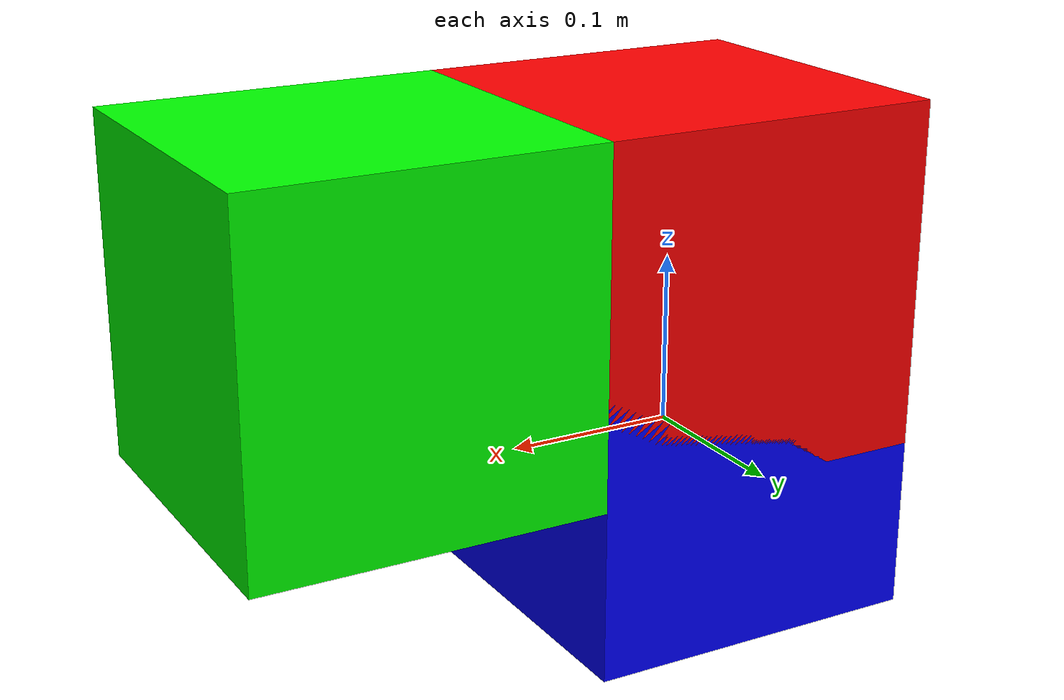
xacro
<?xml version="1.0"?>
<robot xmlns:xacro="http://www.ros.org/wiki/xacro" name="six_dof_robot">

  <link name="base_link">
    <inertial>
      <mass value="1.0"/>
      <origin rpy="0 0 0" xyz="0 0 0"/>
      <inertia ixx="0.005" ixy="0" ixz="0" iyy="0.005" iyz="0" izz="0.005"/>
    </inertial>
    <visual>
      <origin xyz="0 0 0" rpy="0 0 0"/>
      <geometry>
        <box size="0.2 0.2 0.2"/>
      </geometry>
      <material name="blue">
        <color rgba="0.0 0.0 1.0 1.0"/>
      </material>
    </visual>
  </link>

  <joint name="base_to_arm1" type="revolute">
    <parent link="base_link"/>
    <child link="arm1_link"/>
    <axis xyz="0 1 0"/>
    <limit effort="1000" lower="-1.57" upper="1.57" velocity="2.0"/>
    <origin rpy="0 0 0" xyz="0 0 0.1"/>
  </joint>

  <link name="arm1_link">
    <inertial>
      <mass value="1.0"/>
      <origin rpy="0 0 0" xyz="0.1 0 0"/>
      <inertia ixx="0.005" ixy="0" ixz="0" iyy="0.005" iyz="0" izz="0.005"/>
    </inertial>
    <visual>
      <origin xyz="0 0 0" rpy="0 0 0"/>
      <geometry>
        <box size="0.2 0.2 0.2"/>
      </geometry>
      <material name="red">
        <color rgba="1.0 0.0 0.0 1.0"/>
      </material>
    </visual>
  </link>

  <joint name="arm1_to_arm2" type="revolute">
    <parent link="arm1_link"/>
    <child link="arm2_link"/>
    <axis xyz="0 1 0"/>
    <limit effort="1000" lower="-1.57" upper="1.57" velocity="2.0"/>
    <origin rpy="0 0 0" xyz="0.2 0 0"/>
  </joint>

  <link name="arm2_link">
    <inertial>
      <mass value="1.0"/>
      <origin rpy="0 0 0" xyz="0.1 0 0"/>
      <inertia ixx="0.005" ixy="0" ixz="0" iyy="0.005" iyz="0" izz="0.005"/>
    </inertial>
    <visual>
      <origin xyz="0 0 0" rpy="0 0 0"/>
      <geometry>
        <box size="0.2 0.2 0.2"/>
      </geometry>
      <material name="green">
        <color rgba="0.0 1.0 0.0 1.0"/>
      </material>
      </visual>
  </link>
    </robot>
